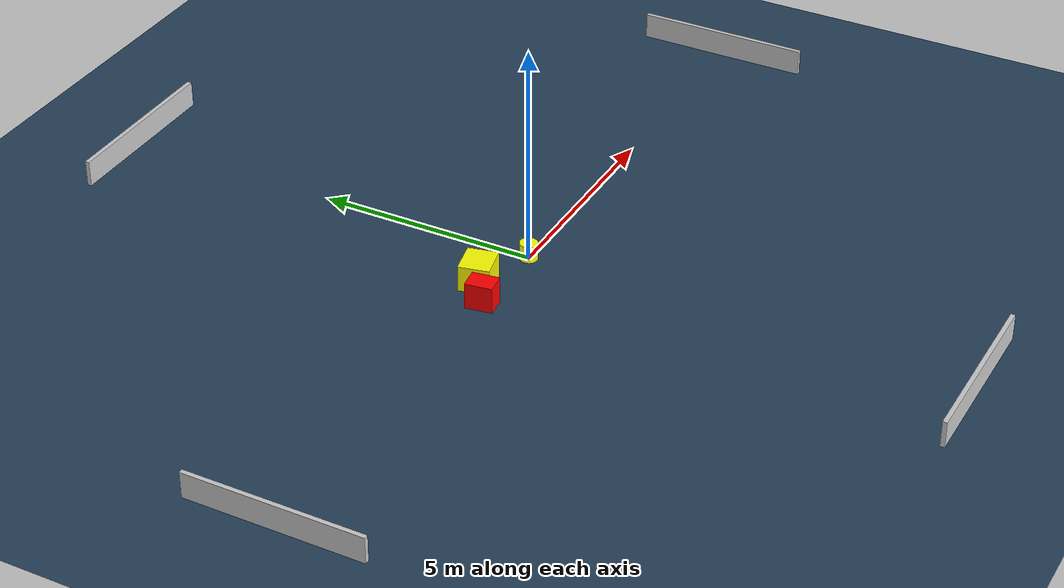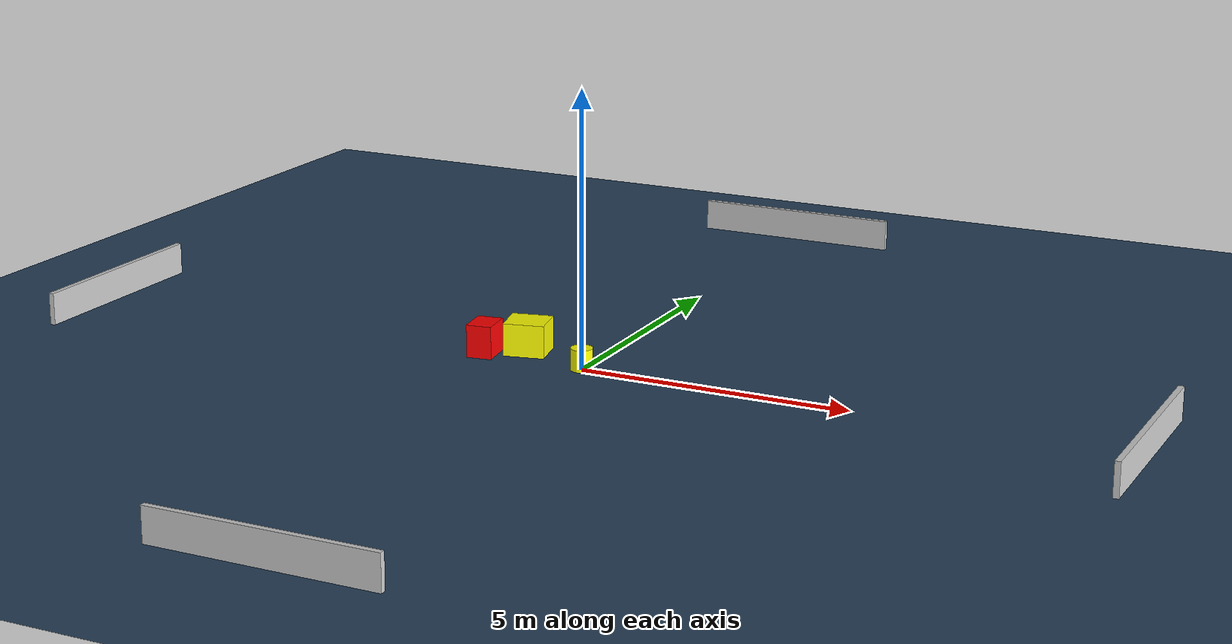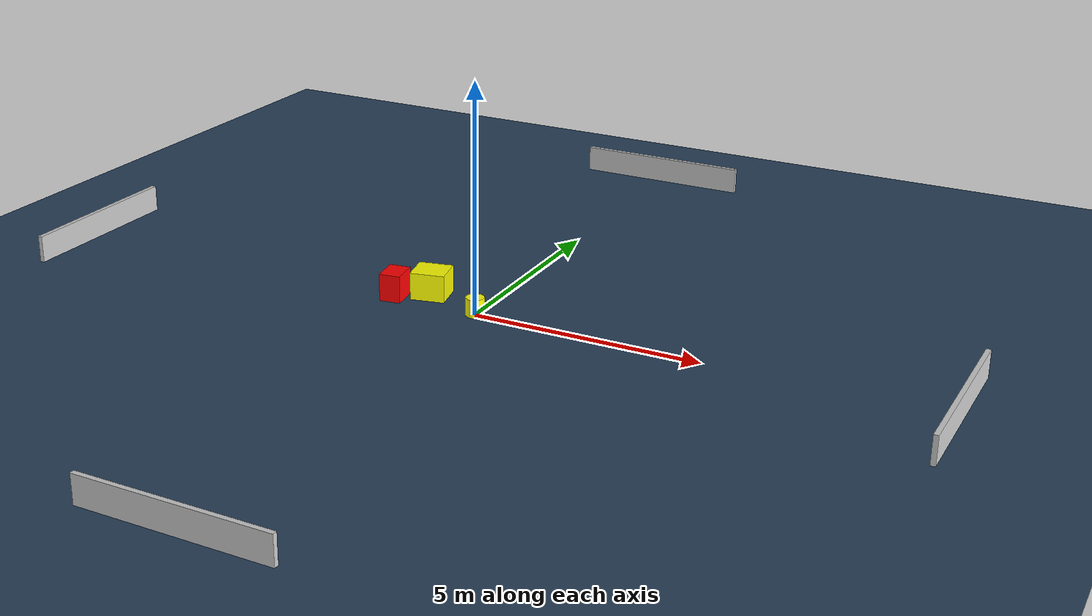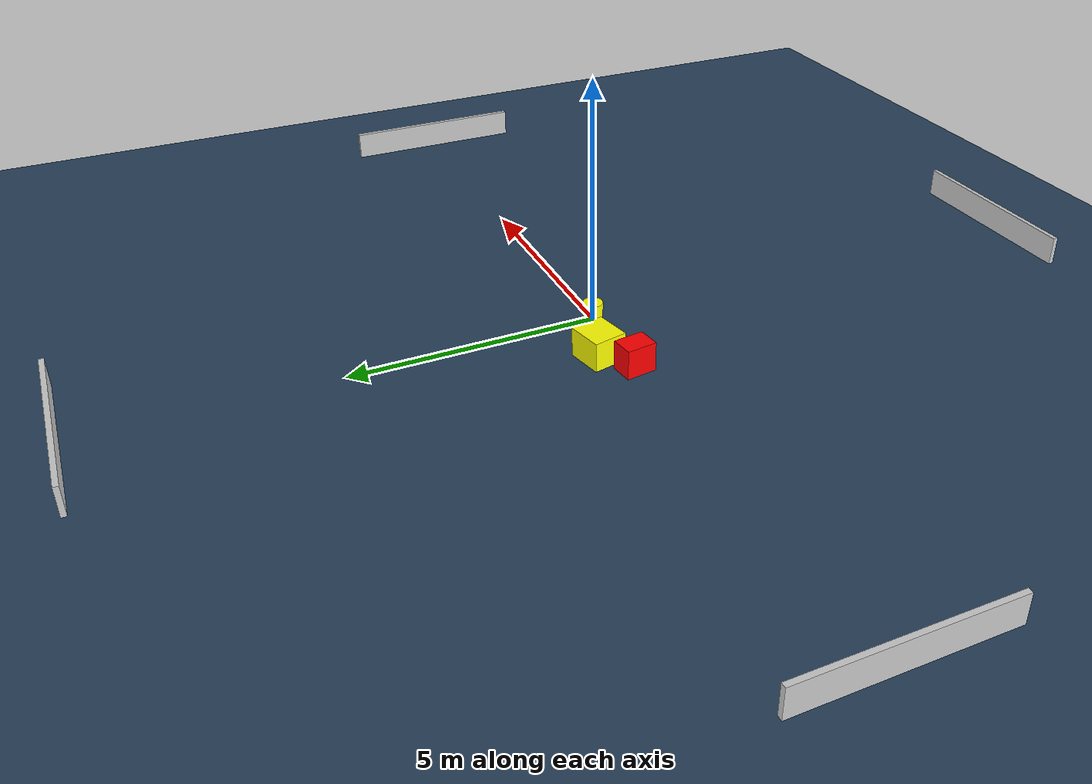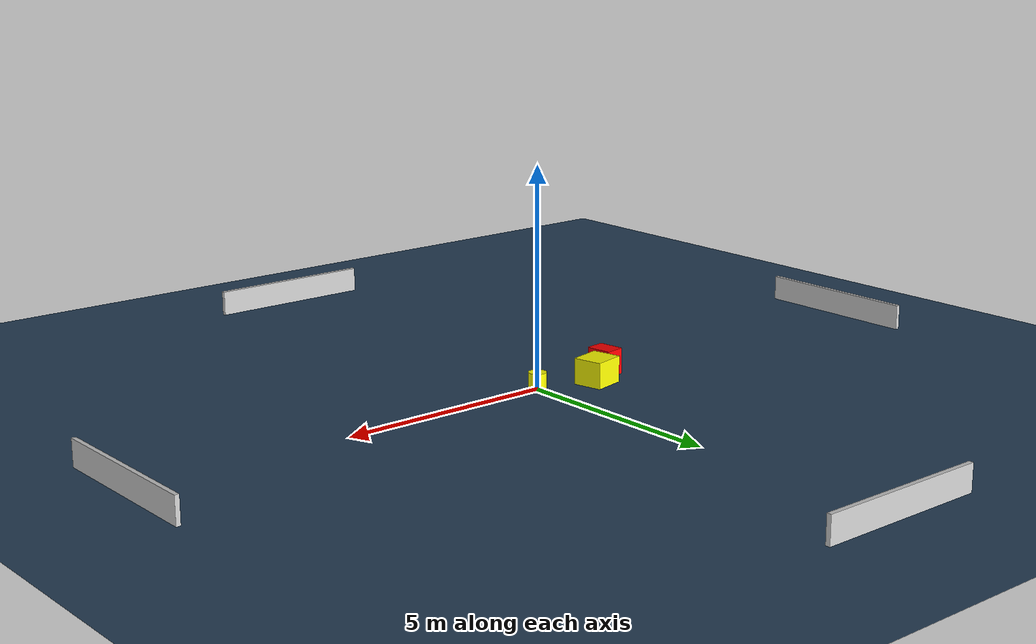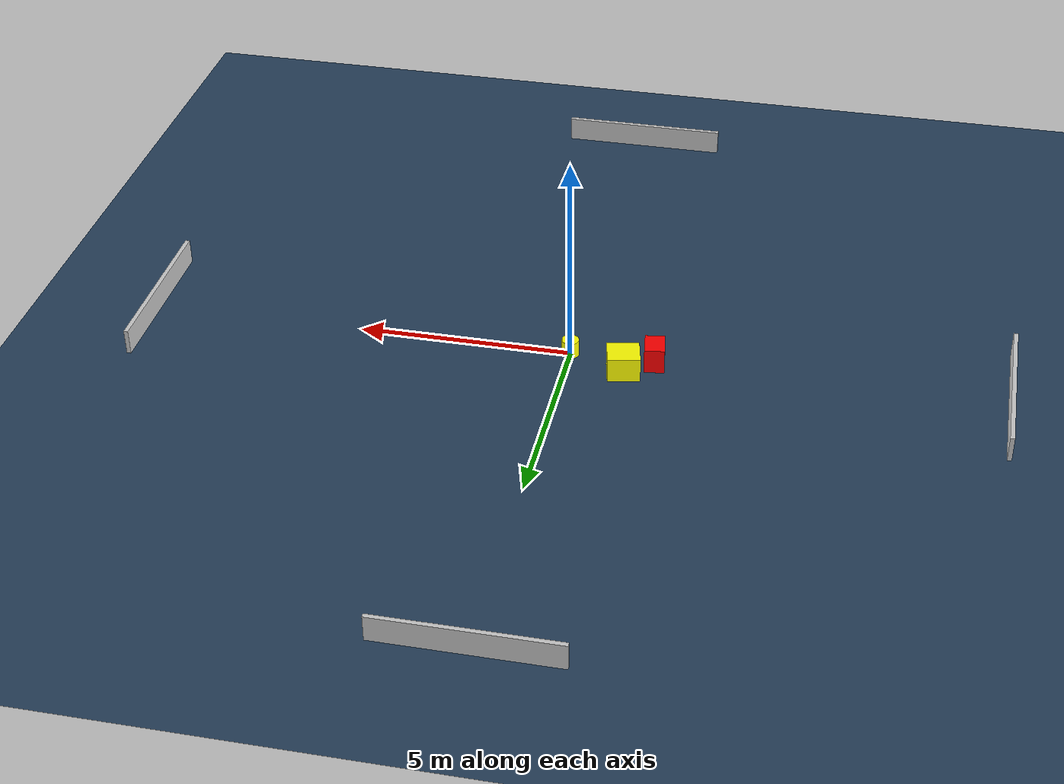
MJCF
<?xml version="1.0" ?>
<mujoco model="generated_environment">
  <option timestep="0.01" integrator="RK4" cone="elliptic"/>
  <default>
    <geom density="1"/>
  </default>
  <asset>
    <texture builtin="gradient" height="3072" name="skybox" rgb1="0.3 0.5 0.7" rgb2="0 0 0" type="skybox" width="512"/>
    <texture builtin="checker" height="300" name="groundplane" rgb1="0.2 0.3 0.4" rgb2="0.1 0.2 0.3" type="2d" width="300"/>
    <material name="groundplane" reflectance="0.2" texrepeat="5 5" texture="groundplane"/>
  </asset>
  <worldbody>
    <light dir="0 0 -1" directional="true" pos="0 0 1.5"/>
    <geom condim="3" friction="0.5 0.005 0.001" material="groundplane" name="floor" pos="0 0 0" size="0 0 0.05" type="plane"/>
    <body name="walls">
      <geom name="wall_1" condim="4" pos="-10.0 0.0 0.3" rgba="0.800000011920929 0.800000011920929 0.800000011920929 1.0" size="0.05 2.0 0.3" type="box"/>
      <geom name="wall_2" condim="4" pos="10.0 0.0 0.3" rgba="0.800000011920929 0.800000011920929 0.800000011920929 1.0" size="0.05 2.0 0.3" type="box"/>
      <geom name="wall_3" condim="4" pos="0.0 -10.0 0.3" rgba="0.800000011920929 0.800000011920929 0.800000011920929 1.0" size="2.0 0.05 0.3" type="box"/>
      <geom name="wall_4" condim="4" pos="0.0 10.0 0.3" rgba="0.800000011920929 0.800000011920929 0.800000011920929 1.0" size="2.0 0.05 0.3" type="box"/>
    </body>
    <body name="robot">
      <joint name="joint_x" type="slide" pos="0 0 0" axis="1 0 0"/>
      <joint name="joint_y" type="slide" pos="0 0 0" axis="0 1 0"/>
      <geom name="robot" type="cylinder" pos="0.0 0.0 0.2" size="0.2 0.2 0.0" mass="5.0" friction="1.0 0.005 0.0001" condim="4" rgba="1.0 1.0 0.0 1.0"/>
    </body>
    <body name="obstacle_1_movable">
      <geom name="obstacle_1_movable" condim="4" pos="-1.3182046985238185 0.49127030790906057 0.3" euler="0 0 282.4097470546196" friction="0.0 0.005 0.001" rgba="1.0 1.0 0.0 1.0" size="0.3427697345163516 0.3750560381190545 0.3" type="box" mass="0.1"/>
      <joint type="free"/>
    </body>
    <body name="obstacle_2_static">
      <geom name="obstacle_2_static" condim="4" pos="-1.963864752915974 0.0479809213587931 0.3" euler="0 0 187.87872566885193" friction="0.0 0.005 0.001" rgba="1.0 0.0 0.0 1.0" size="0.23189410618657272 0.30668163809864657 0.3" type="box"/>
    </body>
  </worldbody>
  <actuator>
    <motor name="actuator_x" joint="joint_x" gear="1" ctrlrange="-1 1"/>
    <motor name="actuator_y" joint="joint_y" gear="1" ctrlrange="-1 1"/>
  </actuator>
</mujoco>
